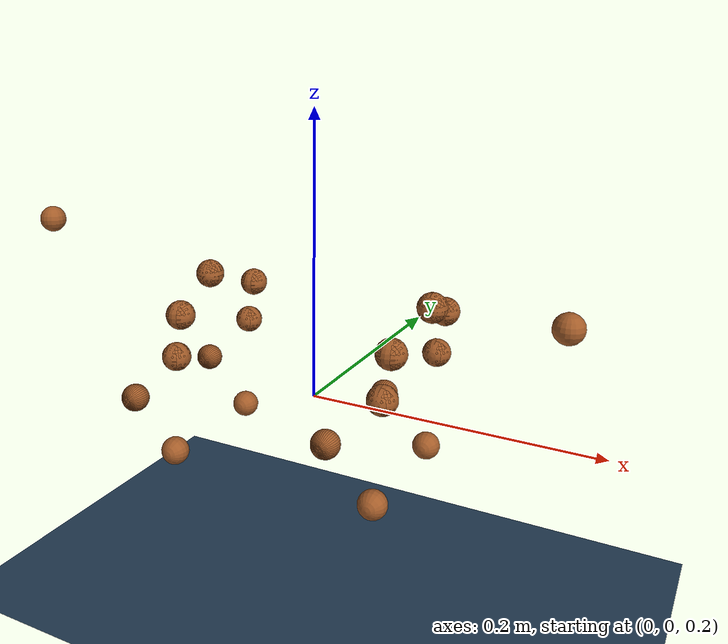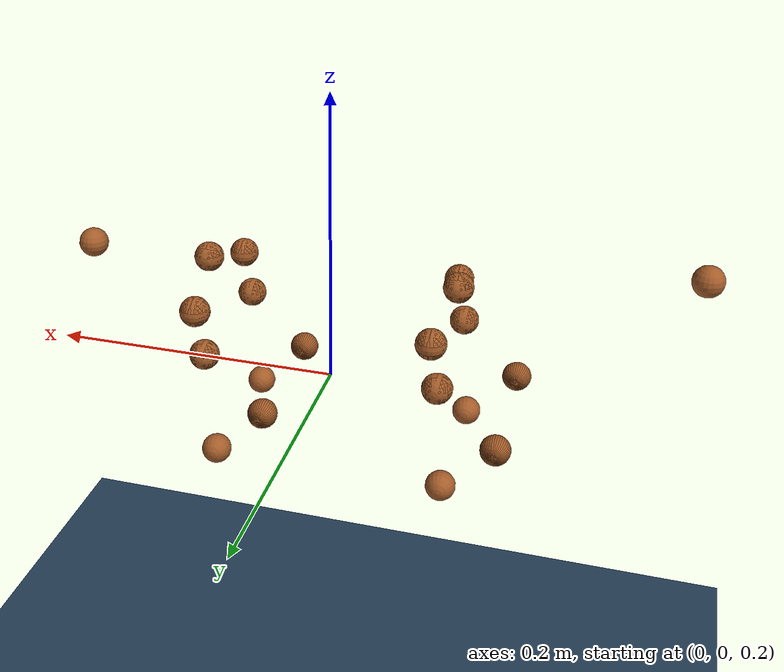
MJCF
<mujoco model="Marcos">
  <option timestep="0.005"/>
  <size njmax="8000" nconmax="4000"/>
  <visual>
    <map force="0.1" zfar="30"/>
    <rgba haze="0.15 0.25 0.35 1"/>
  </visual>
  <statistic center="0 0 0.7"/>
  <asset>
    <texture type="skybox" builtin="gradient" rgb1=".3 .5 .7" rgb2="0 0 0" width="32" height="512"/>
    <texture name="body" type="cube" builtin="flat" mark="cross" width="128" height="128" rgb1="0.8 0.6 0.4" rgb2="0.8 0.6 0.4" markrgb="1 1 1" random="0.01"/>
    <material name="body" texture="body" texuniform="true" rgba="0.8 0.6 .4 1"/>
    <texture name="grid" type="2d" builtin="checker" width="512" height="512" rgb1=".1 .2 .3" rgb2=".2 .3 .4"/>
    <material name="grid" texture="grid" texrepeat="1 1" texuniform="true" reflectance=".2"/>
  </asset>
  <default>
    <motor ctrlrange="-1 1" ctrllimited="true"/>
    <default class="body">

      <!-- geoms -->
      <geom type="sphere" condim="1" friction=".7" solimp=".9 .99 .003" solref=".015 1" material="body" group="1"/>
<!-- joints -->
      <joint type="hinge" damping="7.5" stiffness="5" armature=".01" limited="true" solimplimit="0 .99 .01"/>
    </default>
  </default>
  <worldbody>
    <geom name="floor" size="0 0 .05" type="plane" material="grid" condim="3"/>
    <body name="Marcos_base" pos="0.0 0.0 0.14144048515319824" childclass="body">
      <freejoint name="root"/>
      <geom name="Marcos_base_1" pos="0.07749500000000001 -0.046755000000000005 0.119995" size="0.01"/>
      <body name="basePan_RightFront" pos="0.0775 -0.04675 0.12"  quat="6.171209208705922E-5 -0.7071684825084507 6.170132223498458E-5 0.7070450690947923">
        <joint name="basePan_RightFront"  pos="0.0 0.0 0.0" axis="0.0 0.0 1.0" range="-34.019999999999996 84.10499999999999" />
        <geom name="basePan_RightFront_A" pos="0.030994999527843004 4.105206537133909E-7 0.004995" size="0.01"/>
        <geom name="basePan_RightFront_B" pos="-5.0E-6 -5.0E-6 -5.0E-6" size="0.01"/>
        <body name="baseTilt_RightFront" pos="0.030999999527843002 5.410520653713441E-6 0.005"  quat="0.7072918743815211 -0.7069216341423136 -6.16905505034108E-5 6.172286005948052E-5">
          <joint name="baseTilt_RightFront"  pos="0.0 0.0 0.0" axis="0.0 0.0 1.0" range="-85.05 85.05" />
          <geom name="baseTilt_RightFront_A" pos="0.03888587296526011 -0.03889587296526012 -5.0E-6" size="0.01"/>
          <geom name="baseTilt_RightFront_B" pos="-5.0E-6 -5.0E-6 -5.0E-6" size="0.01"/>
          <body name="elbow_RightFront" pos="0.038890872965260115 -0.03889087296526011 0.0"  quat="0.9238795289934143 8.062369856820899E-5 -3.339542939563245E-5 -0.3826834309079392">
            <joint name="elbow_RightFront"  pos="0.0 0.0 0.0" axis="0.0 0.0 1.0" range="-85.05 85.05" />
            <geom name="elbow_RightFront_A" pos="-4.999999999997336E-6 0.047994999999999996 -5.0E-6" size="0.01"/>
            <geom name="elbow_RightFront_B" pos="-5.0E-6 -5.0E-6 -5.0E-6" size="0.01"/>
          </body>
        </body>
      </body>
      <geom name="Marcos_base_2" pos="0.07749500000000001 0.046744999999999995 0.119995" size="0.01"/>
      <body name="basePan_LeftFront" pos="0.0775 0.04675 0.12"  quat="6.17120920876324E-5 -0.7071684825084507 6.170132223555764E-5 0.7070450690947923">
        <joint name="basePan_LeftFront"  pos="0.0 0.0 0.0" axis="0.0 0.0 1.0" range="-85.05 35.91" />
        <geom name="basePan_LeftFront_A" pos="0.030994999527843004 4.105206537133909E-7 0.004995" size="0.01"/>
        <geom name="basePan_LeftFront_B" pos="-5.0E-6 -5.0E-6 -5.0E-6" size="0.01"/>
        <body name="baseTilt_LeftFront" pos="0.030999999527843002 5.410520653713441E-6 0.005"  quat="0.7072918743815211 -0.7069216341423136 -6.16905505034108E-5 6.172286005948052E-5">
          <joint name="baseTilt_LeftFront"  pos="0.0 0.0 0.0" axis="0.0 0.0 1.0" range="-85.05 85.05" />
          <geom name="baseTilt_LeftFront_A" pos="0.03888587296526011 -0.03889587296526012 -5.0E-6" size="0.01"/>
          <geom name="baseTilt_LeftFront_B" pos="-5.0E-6 -5.0E-6 -5.0E-6" size="0.01"/>
          <body name="elbow_LeftFront" pos="0.038890872965260115 -0.03889087296526011 0.0"  quat="0.9238795289934143 8.062369856820899E-5 -3.339542939563245E-5 -0.3826834309079392">
            <joint name="elbow_LeftFront"  pos="0.0 0.0 0.0" axis="0.0 0.0 1.0" range="-85.05 85.05" />
            <geom name="elbow_LeftFront_A" pos="-4.999999999997336E-6 0.047994999999999996 -5.0E-6" size="0.01"/>
            <geom name="elbow_LeftFront_B" pos="-5.0E-6 -5.0E-6 -5.0E-6" size="0.01"/>
          </body>
        </body>
      </body>
      <geom name="Marcos_base_3" pos="-0.07750499999999999 -0.046755000000000005 0.119995" size="0.01"/>
      <body name="basePan_RightRear" pos="-0.0775 -0.04675 0.12"  quat="-6.171209208705922E-5 -0.7071684825084507 -6.170132223498458E-5 0.7070450690947923">
        <joint name="basePan_RightRear"  pos="0.0 0.0 0.0" axis="0.0 0.0 1.0" range="-37.8 85.05" />
        <geom name="basePan_RightRear_A" pos="0.030995 -5.0E-6 0.004995" size="0.01"/>
        <geom name="basePan_RightRear_B" pos="-5.0E-6 -5.0E-6 -5.0E-6" size="0.01"/>
        <body name="baseTilt_RightRear" pos="0.031 0.0 0.005"  quat="0.7071067811865476 -0.7071067811865475 -0.0 -0.0">
          <joint name="baseTilt_RightRear"  pos="0.0 0.0 0.0" axis="0.0 0.0 1.0" range="-85.05 85.05" />
          <geom name="baseTilt_RightRear_A" pos="0.03888587296526011 -0.03889587296526011 -5.0E-6" size="0.01"/>
          <geom name="baseTilt_RightRear_B" pos="-5.0E-6 -5.0E-6 -5.0E-6" size="0.01"/>
          <body name="elbow_RightRear" pos="0.038890872965260115 -0.03889087296526011 0.0"  quat="0.9238795325112867 -0.0 -0.0 -0.3826834323650898">
            <joint name="elbow_RightRear"  pos="0.0 0.0 0.0" axis="0.0 0.0 1.0" range="-85.05 85.05" />
            <geom name="elbow_RightRear_A" pos="-4.999999999997336E-6 0.047994999999999996 -5.0E-6" size="0.01"/>
            <geom name="elbow_RightRear_B" pos="-5.0E-6 -5.0E-6 -5.0E-6" size="0.01"/>
          </body>
        </body>
      </body>
      <geom name="Marcos_base_4" pos="-0.07750499999999999 0.046744999999999995 0.119995" size="0.01"/>
      <body name="basePan_LeftRear" pos="-0.0775 0.04675 0.12"  quat="6.171209208705922E-5 -0.7071684825084507 6.170132223498458E-5 0.7070450690947923">
        <joint name="basePan_LeftRear"  pos="0.0 0.0 0.0" axis="0.0 0.0 1.0" range="-84.10499999999999 31.185" />
        <geom name="basePan_LeftRear_A" pos="0.030994999527843004 4.105206537133909E-7 0.004995" size="0.01"/>
        <geom name="basePan_LeftRear_B" pos="-5.0E-6 -5.0E-6 -5.0E-6" size="0.01"/>
        <body name="baseTilt_LeftRear" pos="0.030999999527843002 5.410520653713441E-6 0.005"  quat="0.7072918743815211 -0.7069216341423136 -6.16905505034108E-5 6.172286005948052E-5">
          <joint name="baseTilt_LeftRear"  pos="0.0 0.0 0.0" axis="0.0 0.0 1.0" range="-85.05 85.05" />
          <geom name="baseTilt_LeftRear_A" pos="0.03888587296526011 -0.03889587296526012 -5.0E-6" size="0.01"/>
          <geom name="baseTilt_LeftRear_B" pos="-5.0E-6 -5.0E-6 -5.0E-6" size="0.01"/>
          <body name="elbow_LeftRear" pos="0.038890872965260115 -0.03889087296526011 0.0"  quat="0.9238795289934143 8.062369856820899E-5 -3.339542939563245E-5 -0.3826834309079392">
            <joint name="elbow_LeftRear"  pos="0.0 0.0 0.0" axis="0.0 0.0 1.0" range="-85.05 85.05" />
            <geom name="elbow_LeftRear_A" pos="-4.999999999997336E-6 0.047994999999999996 -5.0E-6" size="0.01"/>
            <geom name="elbow_LeftRear_B" pos="-5.0E-6 -5.0E-6 -5.0E-6" size="0.01"/>
          </body>
        </body>
      </body>
      <geom name="Marcos_base_5" pos="0.084995 -5.0E-6 0.136995" size="0.01"/>
      <body name="tilt_Head" pos="0.085 0.0 0.137"  quat="0.7071067811865476 -0.7071067811865475 -0.0 -0.0">
        <joint name="tilt_Head"  pos="0.0 0.0 0.0" axis="0.0 0.0 1.0" range="-85.05 85.05" />
        <geom name="tilt_Head_A" pos="-5.0E-6 -5.0E-6 -5.0E-6" size="0.01"/>
        <geom name="tilt_Head_B" pos="-5.0E-6 -5.0E-6 -5.0E-6" size="0.01"/>
        <body name="pan_Head" pos="0.0 0.0 0.0"  quat="0.7071067811865476 0.7071067811865475 -0.0 -0.0">
          <joint name="pan_Head"  pos="0.0 0.0 0.0" axis="0.0 0.0 1.0" range="-70.875 63.315" />
          <geom name="pan_Head_A" pos="-5.0E-6 -5.0E-6 -5.0E-6" size="0.01"/>
          <geom name="pan_Head_B" pos="-5.0E-6 -5.0E-6 -5.0E-6" size="0.01"/>
          <body name="tip_Head" pos="0.0 0.0 0.0"  quat="1.0 -0.0 -0.0 -0.0">
            <joint name="tip_Head"  pos="0.0 0.0 0.0" axis="0.0 0.0 1.0" range="-70.875 63.315" />
            <geom name="tip_Head_A" pos="0.084995 -5.0E-6 -5.0E-6" size="0.01"/>
            <geom name="tip_Head_B" pos="-5.0E-6 -5.0E-6 -5.0E-6" size="0.01"/>
          </body>
        </body>
      </body>
      <geom name="Marcos_base_6" pos="-0.085005 -5.0E-6 0.136995" size="0.01"/>
      <body name="basePan_Tail" pos="-0.085 0.0 0.137"  quat="6.170670739598364E-5 -6.170670739598361E-5 -0.7071067784940844 0.7071067784940845">
        <joint name="basePan_Tail"  pos="0.0 0.0 0.0" axis="0.0 0.0 1.0" range="-85.05 85.05" />
        <geom name="basePan_Tail_A" pos="-5.0E-6 -5.0E-6 -5.0E-6" size="0.01"/>
        <geom name="basePan_Tail_B" pos="-5.0E-6 -5.0E-6 -5.0E-6" size="0.01"/>
        <body name="baseTilt_Tail" pos="0.0 0.0 0.0"  quat="0.7071067811865476 0.7071067811865475 -0.0 -0.0">
          <joint name="baseTilt_Tail"  pos="0.0 0.0 0.0" axis="0.0 0.0 1.0" range="-85.05 85.05" />
          <geom name="baseTilt_Tail_A" pos="-5.0E-6 -5.0E-6 -5.0E-6" size="0.01"/>
          <geom name="baseTilt_Tail_B" pos="-5.0E-6 -5.0E-6 -5.0E-6" size="0.01"/>
          <body name="tip_Tail" pos="0.0 0.0 0.0"  quat="1.0 -0.0 -0.0 -0.0">
            <joint name="tip_Tail"  pos="0.0 0.0 0.0" axis="0.0 0.0 1.0" range="-85.05 85.05" />
            <geom name="tip_Tail_A" pos="0.14999500000000002 -5.0E-6 0.024995" size="0.01"/>
            <geom name="tip_Tail_B" pos="-5.0E-6 -5.0E-6 -5.0E-6" size="0.01"/>
          </body>
        </body>
      </body>
    </body>

  </worldbody>
    <actuator>
      <motor name="elbow_LeftFront"       gear="120"  joint="elbow_LeftFront"/>
      <motor name="baseTilt_RightRear"       gear="120"  joint="baseTilt_RightRear"/>
      <motor name="basePan_RightRear"       gear="120"  joint="basePan_RightRear"/>
      <motor name="tip_Tail"       gear="120"  joint="tip_Tail"/>
      <motor name="basePan_LeftFront"       gear="120"  joint="basePan_LeftFront"/>
      <motor name="elbow_LeftRear"       gear="120"  joint="elbow_LeftRear"/>
      <motor name="elbow_RightFront"       gear="120"  joint="elbow_RightFront"/>
      <motor name="basePan_LeftRear"       gear="120"  joint="basePan_LeftRear"/>
      <motor name="baseTilt_RightFront"       gear="120"  joint="baseTilt_RightFront"/>
      <motor name="elbow_RightRear"       gear="120"  joint="elbow_RightRear"/>
      <motor name="tilt_Head"       gear="120"  joint="tilt_Head"/>
      <motor name="basePan_RightFront"       gear="120"  joint="basePan_RightFront"/>
      <motor name="pan_Head"       gear="120"  joint="pan_Head"/>
      <motor name="baseTilt_Tail"       gear="120"  joint="baseTilt_Tail"/>
      <motor name="tip_Head"       gear="120"  joint="tip_Head"/>
      <motor name="baseTilt_LeftRear"       gear="120"  joint="baseTilt_LeftRear"/>
      <motor name="baseTilt_LeftFront"       gear="120"  joint="baseTilt_LeftFront"/>
      <motor name="basePan_Tail"       gear="120"  joint="basePan_Tail"/>
    </actuator>

</mujoco>
